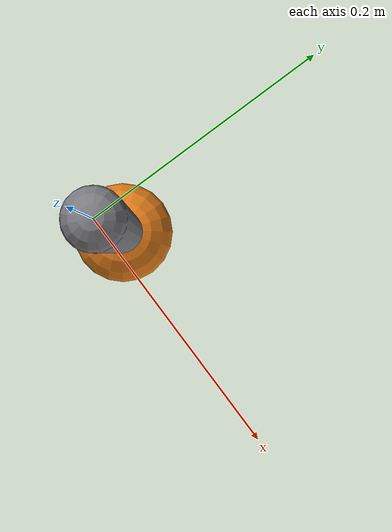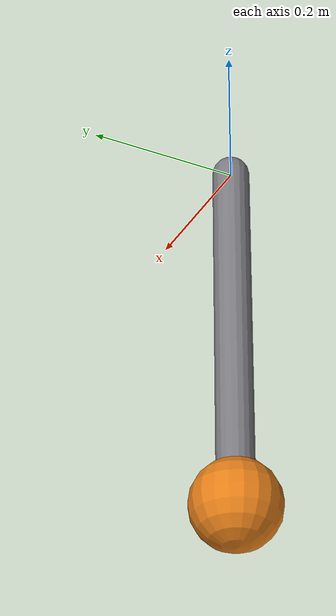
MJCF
<mujoco model="sensor-jacobians">
  <compiler angle="radian"/>
  <option gravity="0 0 -9.81" timestep="0.002"/>

  <default>
    <geom contype="0" conaffinity="0"/>
  </default>

  <worldbody>
    <body name="link" pos="0 0 0">
      <joint name="hinge" type="hinge" axis="0 1 0" damping="0.5"/>
      <inertial pos="0 0 -0.5" mass="5.0" diaginertia="0.5 0.5 0.01"/>
      <geom name="rod" type="capsule" size="0.025"
            fromto="0 0 0  0 0 -0.5" rgba="0.48 0.48 0.50 1"/>
      <geom name="tip" type="sphere" size="0.06"
            pos="0 0 -0.5" rgba="0.9 0.5 0.1 1"/>
    </body>
  </worldbody>

  <actuator>
    <motor name="torque" joint="hinge" gear="1"/>
  </actuator>

  <sensor>
    <jointpos name="pos" joint="hinge"/>
    <jointvel name="vel" joint="hinge"/>
  </sensor>
</mujoco>
